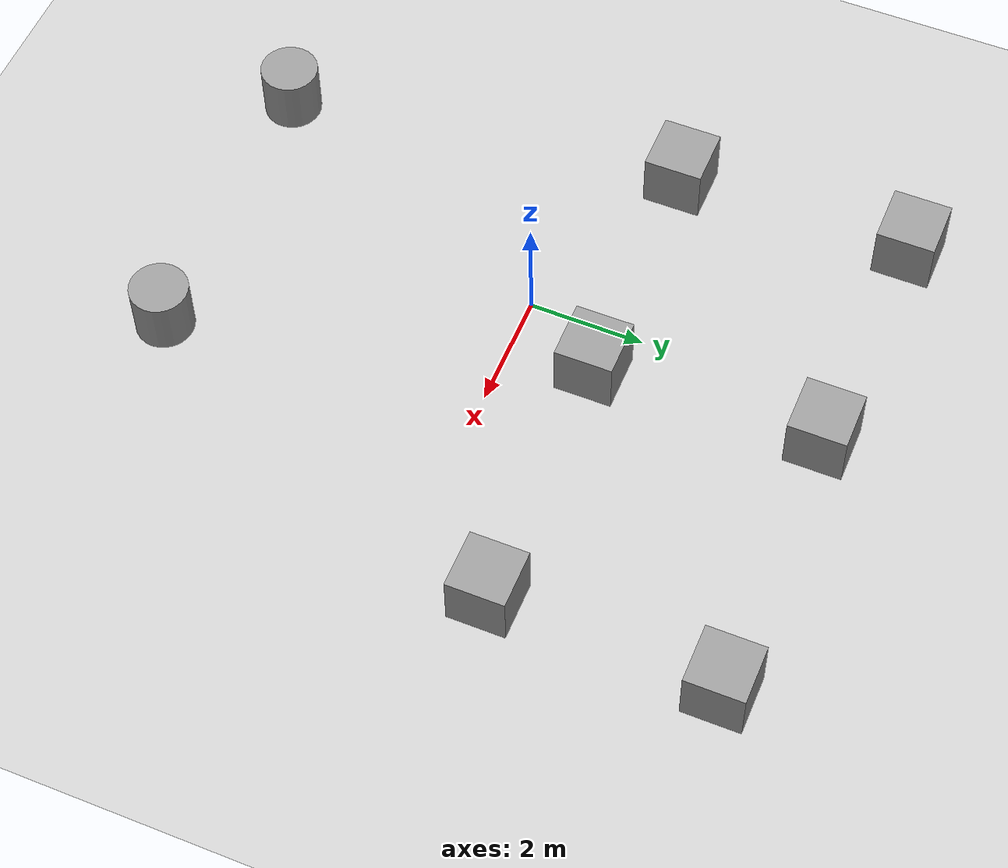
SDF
<sdf version="1.7">
 <world name="default">
  <light name="sun" type="directional">
   <pose>0 0 10 0 -0 0</pose>
   <diffuse>0.8 0.8 0.8 1</diffuse>
   <specular>0.2 0.2 0.2 1</specular>
   <attenuation>
    <range>1000</range>
    <constant>0.9</constant>
    <linear>0.01</linear>
    <quadratic>0.001</quadratic>
   </attenuation>
   <direction>-0.5 0.1 -0.9</direction>
   <spot><inner_angle>0</inner_angle><outer_angle>0</outer_angle><falloff>0</falloff></spot>
  </light>
  <model name="ground_plane">
   <static>1</static>
   <link name="link">
    <collision name="collision">
     <geometry><plane><normal>0 0 1</normal><size>100 100</size></plane></geometry>
     <surface>
      <contact><collide_bitmask>65535</collide_bitmask></contact>
      <friction><ode><mu>100</mu><mu2>50</mu2></ode></friction>
     </surface>
    </collision>
    <visual name="visual">
     <cast_shadows>0</cast_shadows>
     <geometry><plane><normal>0 0 1</normal><size>100 100</size></plane></geometry>
     <material>
      <script><uri>file://media/materials/scripts/gazebo.material</uri><name>Gazebo/Grey</name></script>
     </material>
    </visual>
   </link>
  </model>
  <gravity>0 0 -9.8</gravity>
  <magnetic_field>6e-06 2.3e-05 -4.2e-05</magnetic_field>
  <atmosphere type="adiabatic"/>
  <physics type="ode">
   <max_step_size>0.001</max_step_size>
   <real_time_factor>1</real_time_factor>
   <real_time_update_rate>1000</real_time_update_rate>
  </physics>
  <scene><ambient>0.4 0.4 0.4 1</ambient><background>0.7 0.7 0.7 1</background><shadows>1</shadows></scene>
  <spherical_coordinates>
   <surface_model>EARTH_WGS84</surface_model>
   <latitude_deg>0</latitude_deg>
   <longitude_deg>0</longitude_deg>
   <elevation>0</elevation>
   <heading_deg>0</heading_deg>
  </spherical_coordinates>
  <model name="unit_box">
   <pose>-3.35278 1.41613 0.499995 -1e-05 -0 -0</pose>
   <link name="link">
    <inertial>
     <mass>1</mass>
     <inertia>
      <ixx>0.166667</ixx>
      <ixy>0</ixy>
      <ixz>0</ixz>
      <iyy>0.166667</iyy>
      <iyz>0</iyz>
      <izz>0.166667</izz>
     </inertia>
    </inertial>
    <collision name="collision"><geometry><box><size>1 1 1</size></box></geometry></collision>
    <visual name="visual">
     <geometry><box><size>1 1 1</size></box></geometry>
     <material>
      <script><name>Gazebo/Grey</name><uri>file://media/materials/scripts/gazebo.material</uri></script>
     </material>
    </visual>
   </link>
  </model>
  <model name="unit_box_0">
   <pose>0.887431 1.4684 0.499995 0 1e-05 0</pose>
   <link name="link">
    <inertial>
     <mass>1</mass>
     <inertia>
      <ixx>0.166667</ixx>
      <ixy>0</ixy>
      <ixz>0</ixz>
      <iyy>0.166667</iyy>
      <iyz>0</iyz>
      <izz>0.166667</izz>
     </inertia>
    </inertial>
    <collision name="collision"><geometry><box><size>1 1 1</size></box></geometry></collision>
    <visual name="visual">
     <geometry><box><size>1 1 1</size></box></geometry>
     <material>
      <script><name>Gazebo/Grey</name><uri>file://media/materials/scripts/gazebo.material</uri></script>
     </material>
    </visual>
   </link>
  </model>
  <model name="unit_box_1">
   <pose>5.47201 1.53775 0.499995 -1e-05 -0 -0</pose>
   <link name="link">
    <inertial>
     <mass>1</mass>
     <inertia>
      <ixx>0.166667</ixx>
      <ixy>0</ixy>
      <ixz>0</ixz>
      <iyy>0.166667</iyy>
      <iyz>0</iyz>
      <izz>0.166667</izz>
     </inertia>
    </inertial>
    <collision name="collision"><geometry><box><size>1 1 1</size></box></geometry></collision>
    <visual name="visual">
     <geometry><box><size>1 1 1</size></box></geometry>
     <material>
      <script><name>Gazebo/Grey</name><uri>file://media/materials/scripts/gazebo.material</uri></script>
     </material>
    </visual>
   </link>
  </model>
  <model name="unit_box_2">
   <pose>-3.37045 5.53109 0.499995 0 1e-05 0</pose>
   <link name="link">
    <inertial>
     <mass>1</mass>
     <inertia>
      <ixx>0.166667</ixx>
      <ixy>0</ixy>
      <ixz>0</ixz>
      <iyy>0.166667</iyy>
      <iyz>0</iyz>
      <izz>0.166667</izz>
     </inertia>
    </inertial>
    <collision name="collision"><geometry><box><size>1 1 1</size></box></geometry></collision>
    <visual name="visual">
     <geometry><box><size>1 1 1</size></box></geometry>
     <material>
      <script><name>Gazebo/Grey</name><uri>file://media/materials/scripts/gazebo.material</uri></script>
     </material>
    </visual>
   </link>
  </model>
  <model name="unit_box_3">
   <pose>0.798207 5.39417 0.499995 -1e-05 -0 -0</pose>
   <link name="link">
    <inertial>
     <mass>1</mass>
     <inertia>
      <ixx>0.166667</ixx>
      <ixy>0</ixy>
      <ixz>0</ixz>
      <iyy>0.166667</iyy>
      <iyz>0</iyz>
      <izz>0.166667</izz>
     </inertia>
    </inertial>
    <collision name="collision"><geometry><box><size>1 1 1</size></box></geometry></collision>
    <visual name="visual">
     <geometry><box><size>1 1 1</size></box></geometry>
     <material>
      <script><name>Gazebo/Grey</name><uri>file://media/materials/scripts/gazebo.material</uri></script>
     </material>
    </visual>
   </link>
  </model>
  <model name="unit_box_4">
   <pose>5.62333 5.43335 0.499995 0 1e-05 0</pose>
   <link name="link">
    <inertial>
     <mass>1</mass>
     <inertia>
      <ixx>0.166667</ixx>
      <ixy>0</ixy>
      <ixz>0</ixz>
      <iyy>0.166667</iyy>
      <iyz>0</iyz>
      <izz>0.166667</izz>
     </inertia>
    </inertial>
    <collision name="collision"><geometry><box><size>1 1 1</size></box></geometry></collision>
    <visual name="visual">
     <geometry><box><size>1 1 1</size></box></geometry>
     <material>
      <script><name>Gazebo/Grey</name><uri>file://media/materials/scripts/gazebo.material</uri></script>
     </material>
    </visual>
   </link>
  </model>
  <model name="unit_cylinder">
   <pose>-2.4522 -5.57678 0.499993 -3e-06 -4e-06 -0</pose>
   <link name="link">
    <inertial>
     <mass>1</mass>
     <inertia><ixx>0.145833</ixx><ixy>0</ixy><ixz>0</ixz><iyy>0.145833</iyy><iyz>0</iyz><izz>0.125</izz></inertia>
    </inertial>
    <collision name="collision">
     <geometry><cylinder><radius>0.5</radius><length>1</length></cylinder></geometry>
    </collision>
    <visual name="visual">
     <geometry><cylinder><radius>0.5</radius><length>1</length></cylinder></geometry>
     <material>
      <script><name>Gazebo/Grey</name><uri>file://media/materials/scripts/gazebo.material</uri></script>
     </material>
    </visual>
   </link>
  </model>
  <model name="unit_cylinder_0">
   <pose>2.64769 -5.50735 0.499997 3e-06 4e-06 -0</pose>
   <link name="link">
    <inertial>
     <mass>1</mass>
     <inertia><ixx>0.145833</ixx><ixy>0</ixy><ixz>0</ixz><iyy>0.145833</iyy><iyz>0</iyz><izz>0.125</izz></inertia>
    </inertial>
    <collision name="collision">
     <geometry><cylinder><radius>0.5</radius><length>1</length></cylinder></geometry>
    </collision>
    <visual name="visual">
     <geometry><cylinder><radius>0.5</radius><length>1</length></cylinder></geometry>
     <material>
      <script><name>Gazebo/Grey</name><uri>file://media/materials/scripts/gazebo.material</uri></script>
     </material>
    </visual>
   </link>
  </model>
 </world>
</sdf>
